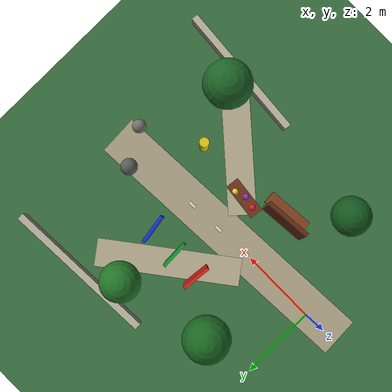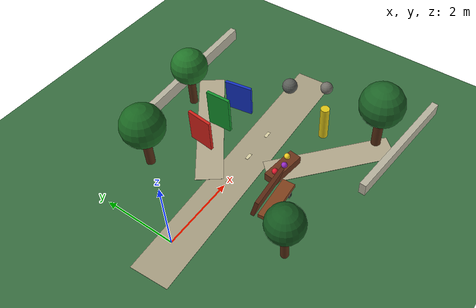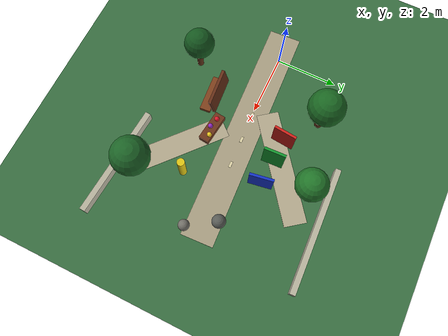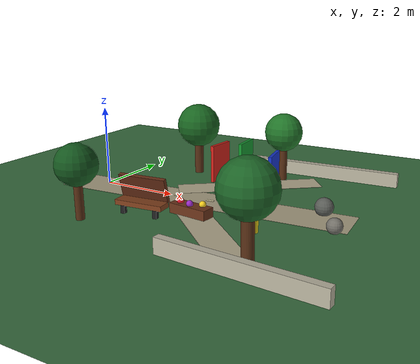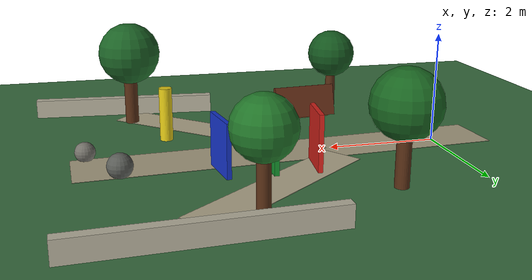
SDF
<?xml version="1.0"?>
<sdf version="1.6">
  <world name="mari_park_test">
    <gravity>0 0 -9.80665</gravity>

    <spherical_coordinates>
      <!-- Keep GPS local ENU behavior aligned with the other Mari Gazebo worlds. -->
      <heading_deg>180</heading_deg>
    </spherical_coordinates>

    <physics name="default_physics" default="true" type="ode">
      <max_step_size>0.001</max_step_size>
      <real_time_factor>1.0</real_time_factor>
      <real_time_update_rate>1000</real_time_update_rate>
    </physics>

    <scene>
      <ambient>0.60 0.60 0.56 1</ambient>
      <background>0.68 0.80 1.00 1</background>
      <shadows>true</shadows>
    </scene>

    <light name="sun" type="directional">
      <cast_shadows>true</cast_shadows>
      <pose>0 0 10 0 0 0</pose>
      <diffuse>0.95 0.91 0.82 1</diffuse>
      <specular>0.20 0.20 0.18 1</specular>
      <attenuation>
        <range>1000</range>
        <constant>0.9</constant>
        <linear>0.01</linear>
        <quadratic>0.001</quadratic>
      </attenuation>
      <direction>-0.35 0.28 -0.89</direction>
    </light>

    <model name="park_ground">
      <static>true</static>
      <link name="link">
        <collision name="ground_collision">
          <geometry>
            <plane>
              <normal>0 0 1</normal>
              <size>18 14</size>
            </plane>
          </geometry>
        </collision>
        <visual name="grass_visual">
          <geometry>
            <plane>
              <normal>0 0 1</normal>
              <size>18 14</size>
            </plane>
          </geometry>
          <material>
            <ambient>0.22 0.43 0.25 1</ambient>
            <diffuse>0.22 0.43 0.25 1</diffuse>
          </material>
        </visual>
      </link>
    </model>

    <model name="walking_paths">
      <static>true</static>
      <link name="link">
        <visual name="main_path">
          <pose>2.8 0 0.004 0 0 0.05</pose>
          <geometry>
            <box>
              <size>7.6 1.05 0.008</size>
            </box>
          </geometry>
          <material>
            <ambient>0.66 0.62 0.51 1</ambient>
            <diffuse>0.66 0.62 0.51 1</diffuse>
          </material>
        </visual>
        <visual name="left_branch_path">
          <pose>3.4 1.55 0.005 0 0 0.65</pose>
          <geometry>
            <box>
              <size>3.7 0.72 0.010</size>
            </box>
          </geometry>
          <material>
            <ambient>0.70 0.66 0.55 1</ambient>
            <diffuse>0.70 0.66 0.55 1</diffuse>
          </material>
        </visual>
        <visual name="right_branch_path">
          <pose>4.2 -1.75 0.005 0 0 -0.72</pose>
          <geometry>
            <box>
              <size>3.4 0.72 0.010</size>
            </box>
          </geometry>
          <material>
            <ambient>0.70 0.66 0.55 1</ambient>
            <diffuse>0.70 0.66 0.55 1</diffuse>
          </material>
        </visual>
        <visual name="path_center_marker">
          <pose>2.2 0.0 0.011 0 0 0.05</pose>
          <geometry>
            <box>
              <size>0.20 0.08 0.012</size>
            </box>
          </geometry>
          <material>
            <ambient>0.86 0.82 0.65 1</ambient>
            <diffuse>0.86 0.82 0.65 1</diffuse>
          </material>
        </visual>
        <visual name="path_center_marker_2">
          <pose>3.1 0.05 0.011 0 0 0.05</pose>
          <geometry>
            <box>
              <size>0.20 0.08 0.012</size>
            </box>
          </geometry>
          <material>
            <ambient>0.86 0.82 0.65 1</ambient>
            <diffuse>0.86 0.82 0.65 1</diffuse>
          </material>
        </visual>
        <visual name="path_center_marker_3">
          <pose>4.0 0.09 0.011 0 0 0.05</pose>
          <geometry>
            <box>
              <size>0.20 0.08 0.012</size>
            </box>
          </geometry>
          <material>
            <ambient>0.86 0.82 0.65 1</ambient>
            <diffuse>0.86 0.82 0.65 1</diffuse>
          </material>
        </visual>
      </link>
    </model>

    <model name="front_park_landmarks">
      <static>true</static>
      <link name="link">
        <collision name="red_sign_collision">
          <pose>2.7 1.25 0.65 0 0 -0.10</pose>
          <geometry>
            <box>
              <size>0.08 0.72 0.95</size>
            </box>
          </geometry>
        </collision>
        <visual name="red_sign_visual">
          <pose>2.7 1.25 0.65 0 0 -0.10</pose>
          <geometry>
            <box>
              <size>0.08 0.72 0.95</size>
            </box>
          </geometry>
          <material>
            <ambient>0.82 0.13 0.10 1</ambient>
            <diffuse>0.82 0.13 0.10 1</diffuse>
          </material>
        </visual>
        <collision name="green_sign_collision">
          <pose>3.45 1.23 0.72 0 0 0.04</pose>
          <geometry>
            <box>
              <size>0.08 0.68 1.10</size>
            </box>
          </geometry>
        </collision>
        <visual name="green_sign_visual">
          <pose>3.45 1.23 0.72 0 0 0.04</pose>
          <geometry>
            <box>
              <size>0.08 0.68 1.10</size>
            </box>
          </geometry>
          <material>
            <ambient>0.08 0.58 0.18 1</ambient>
            <diffuse>0.08 0.58 0.18 1</diffuse>
          </material>
        </visual>
        <collision name="blue_sign_collision">
          <pose>4.25 1.18 0.62 0 0 0.16</pose>
          <geometry>
            <box>
              <size>0.08 0.75 0.90</size>
            </box>
          </geometry>
        </collision>
        <visual name="blue_sign_visual">
          <pose>4.25 1.18 0.62 0 0 0.16</pose>
          <geometry>
            <box>
              <size>0.08 0.75 0.90</size>
            </box>
          </geometry>
          <material>
            <ambient>0.08 0.20 0.78 1</ambient>
            <diffuse>0.08 0.20 0.78 1</diffuse>
          </material>
        </visual>
        <collision name="yellow_post_collision">
          <pose>4.85 -1.15 0.50 0 0 0</pose>
          <geometry>
            <cylinder>
              <radius>0.12</radius>
              <length>1.00</length>
            </cylinder>
          </geometry>
        </collision>
        <visual name="yellow_post_visual">
          <pose>4.85 -1.15 0.50 0 0 0</pose>
          <geometry>
            <cylinder>
              <radius>0.12</radius>
              <length>1.00</length>
            </cylinder>
          </geometry>
          <material>
            <ambient>0.88 0.78 0.08 1</ambient>
            <diffuse>0.88 0.78 0.08 1</diffuse>
          </material>
        </visual>
      </link>
    </model>

    <model name="left_bench">
      <static>true</static>
      <pose>2.2 -1.45 0 0 0 0.08</pose>
      <link name="link">
        <collision name="seat_collision">
          <pose>0 0 0.26 0 0 0</pose>
          <geometry>
            <box>
              <size>1.20 0.34 0.12</size>
            </box>
          </geometry>
        </collision>
        <visual name="seat_visual">
          <pose>0 0 0.26 0 0 0</pose>
          <geometry>
            <box>
              <size>1.20 0.34 0.12</size>
            </box>
          </geometry>
          <material>
            <ambient>0.50 0.25 0.11 1</ambient>
            <diffuse>0.50 0.25 0.11 1</diffuse>
          </material>
        </visual>
        <collision name="back_collision">
          <pose>-0.06 0.22 0.55 0.25 0 0</pose>
          <geometry>
            <box>
              <size>1.20 0.10 0.60</size>
            </box>
          </geometry>
        </collision>
        <visual name="back_visual">
          <pose>-0.06 0.22 0.55 0.25 0 0</pose>
          <geometry>
            <box>
              <size>1.20 0.10 0.60</size>
            </box>
          </geometry>
          <material>
            <ambient>0.38 0.17 0.08 1</ambient>
            <diffuse>0.38 0.17 0.08 1</diffuse>
          </material>
        </visual>
        <collision name="left_leg_collision">
          <pose>-0.42 -0.10 0.12 0 0 0</pose>
          <geometry>
            <box>
              <size>0.10 0.10 0.24</size>
            </box>
          </geometry>
        </collision>
        <visual name="left_leg_visual">
          <pose>-0.42 -0.10 0.12 0 0 0</pose>
          <geometry>
            <box>
              <size>0.10 0.10 0.24</size>
            </box>
          </geometry>
          <material>
            <ambient>0.12 0.12 0.12 1</ambient>
            <diffuse>0.12 0.12 0.12 1</diffuse>
          </material>
        </visual>
        <collision name="right_leg_collision">
          <pose>0.42 -0.10 0.12 0 0 0</pose>
          <geometry>
            <box>
              <size>0.10 0.10 0.24</size>
            </box>
          </geometry>
        </collision>
        <visual name="right_leg_visual">
          <pose>0.42 -0.10 0.12 0 0 0</pose>
          <geometry>
            <box>
              <size>0.10 0.10 0.24</size>
            </box>
          </geometry>
          <material>
            <ambient>0.12 0.12 0.12 1</ambient>
            <diffuse>0.12 0.12 0.12 1</diffuse>
          </material>
        </visual>
      </link>
    </model>

    <model name="tree_cluster_left">
      <static>true</static>
      <link name="link">
        <collision name="trunk_1_collision">
          <pose>1.55 2.05 0.55 0 0 0</pose>
          <geometry>
            <cylinder>
              <radius>0.12</radius>
              <length>1.10</length>
            </cylinder>
          </geometry>
        </collision>
        <visual name="trunk_1_visual">
          <pose>1.55 2.05 0.55 0 0 0</pose>
          <geometry>
            <cylinder>
              <radius>0.12</radius>
              <length>1.10</length>
            </cylinder>
          </geometry>
          <material>
            <ambient>0.34 0.18 0.08 1</ambient>
            <diffuse>0.34 0.18 0.08 1</diffuse>
          </material>
        </visual>
        <visual name="canopy_1_visual">
          <pose>1.55 2.05 1.35 0 0 0</pose>
          <geometry>
            <sphere>
              <radius>0.58</radius>
            </sphere>
          </geometry>
          <material>
            <ambient>0.10 0.40 0.13 1</ambient>
            <diffuse>0.10 0.40 0.13 1</diffuse>
          </material>
        </visual>
        <collision name="trunk_2_collision">
          <pose>3.9 2.55 0.52 0 0 0</pose>
          <geometry>
            <cylinder>
              <radius>0.11</radius>
              <length>1.04</length>
            </cylinder>
          </geometry>
        </collision>
        <visual name="trunk_2_visual">
          <pose>3.9 2.55 0.52 0 0 0</pose>
          <geometry>
            <cylinder>
              <radius>0.11</radius>
              <length>1.04</length>
            </cylinder>
          </geometry>
          <material>
            <ambient>0.34 0.18 0.08 1</ambient>
            <diffuse>0.34 0.18 0.08 1</diffuse>
          </material>
        </visual>
        <visual name="canopy_2_visual">
          <pose>3.9 2.55 1.30 0 0 0</pose>
          <geometry>
            <sphere>
              <radius>0.50</radius>
            </sphere>
          </geometry>
          <material>
            <ambient>0.13 0.46 0.16 1</ambient>
            <diffuse>0.13 0.46 0.16 1</diffuse>
          </material>
        </visual>
      </link>
    </model>

    <model name="tree_cluster_right">
      <static>true</static>
      <link name="link">
        <collision name="trunk_3_collision">
          <pose>1.2 -2.35 0.50 0 0 0</pose>
          <geometry>
            <cylinder>
              <radius>0.10</radius>
              <length>1.00</length>
            </cylinder>
          </geometry>
        </collision>
        <visual name="trunk_3_visual">
          <pose>1.2 -2.35 0.50 0 0 0</pose>
          <geometry>
            <cylinder>
              <radius>0.10</radius>
              <length>1.00</length>
            </cylinder>
          </geometry>
          <material>
            <ambient>0.34 0.18 0.08 1</ambient>
            <diffuse>0.34 0.18 0.08 1</diffuse>
          </material>
        </visual>
        <visual name="canopy_3_visual">
          <pose>1.2 -2.35 1.25 0 0 0</pose>
          <geometry>
            <sphere>
              <radius>0.48</radius>
            </sphere>
          </geometry>
          <material>
            <ambient>0.08 0.34 0.12 1</ambient>
            <diffuse>0.08 0.34 0.12 1</diffuse>
          </material>
        </visual>
        <collision name="trunk_4_collision">
          <pose>5.4 -2.45 0.58 0 0 0</pose>
          <geometry>
            <cylinder>
              <radius>0.13</radius>
              <length>1.16</length>
            </cylinder>
          </geometry>
        </collision>
        <visual name="trunk_4_visual">
          <pose>5.4 -2.45 0.58 0 0 0</pose>
          <geometry>
            <cylinder>
              <radius>0.13</radius>
              <length>1.16</length>
            </cylinder>
          </geometry>
          <material>
            <ambient>0.34 0.18 0.08 1</ambient>
            <diffuse>0.34 0.18 0.08 1</diffuse>
          </material>
        </visual>
        <visual name="canopy_4_visual">
          <pose>5.4 -2.45 1.42 0 0 0</pose>
          <geometry>
            <sphere>
              <radius>0.60</radius>
            </sphere>
          </geometry>
          <material>
            <ambient>0.11 0.39 0.15 1</ambient>
            <diffuse>0.11 0.39 0.15 1</diffuse>
          </material>
        </visual>
      </link>
    </model>

    <model name="flower_beds_and_rocks">
      <static>true</static>
      <link name="link">
        <collision name="left_bed_collision">
          <pose>3.2 -0.95 0.12 0 0 -0.12</pose>
          <geometry>
            <box>
              <size>1.00 0.34 0.24</size>
            </box>
          </geometry>
        </collision>
        <visual name="left_bed_visual">
          <pose>3.2 -0.95 0.12 0 0 -0.12</pose>
          <geometry>
            <box>
              <size>1.00 0.34 0.24</size>
            </box>
          </geometry>
          <material>
            <ambient>0.42 0.20 0.10 1</ambient>
            <diffuse>0.42 0.20 0.10 1</diffuse>
          </material>
        </visual>
        <visual name="flower_red_1">
          <pose>2.90 -0.92 0.28 0 0 0</pose>
          <geometry>
            <sphere>
              <radius>0.08</radius>
            </sphere>
          </geometry>
          <material>
            <ambient>0.90 0.10 0.18 1</ambient>
            <diffuse>0.90 0.10 0.18 1</diffuse>
          </material>
        </visual>
        <visual name="flower_purple_1">
          <pose>3.20 -1.00 0.28 0 0 0</pose>
          <geometry>
            <sphere>
              <radius>0.08</radius>
            </sphere>
          </geometry>
          <material>
            <ambient>0.60 0.16 0.78 1</ambient>
            <diffuse>0.60 0.16 0.78 1</diffuse>
          </material>
        </visual>
        <visual name="flower_yellow_1">
          <pose>3.48 -0.90 0.28 0 0 0</pose>
          <geometry>
            <sphere>
              <radius>0.08</radius>
            </sphere>
          </geometry>
          <material>
            <ambient>0.96 0.80 0.12 1</ambient>
            <diffuse>0.96 0.80 0.12 1</diffuse>
          </material>
        </visual>
        <collision name="rock_1_collision">
          <pose>5.8 0.55 0.17 0 0 0</pose>
          <geometry>
            <sphere>
              <radius>0.22</radius>
            </sphere>
          </geometry>
        </collision>
        <visual name="rock_1_visual">
          <pose>5.8 0.55 0.17 0 0 0</pose>
          <geometry>
            <sphere>
              <radius>0.22</radius>
            </sphere>
          </geometry>
          <material>
            <ambient>0.35 0.36 0.34 1</ambient>
            <diffuse>0.35 0.36 0.34 1</diffuse>
          </material>
        </visual>
        <collision name="rock_2_collision">
          <pose>6.35 -0.35 0.14 0 0 0</pose>
          <geometry>
            <sphere>
              <radius>0.18</radius>
            </sphere>
          </geometry>
        </collision>
        <visual name="rock_2_visual">
          <pose>6.35 -0.35 0.14 0 0 0</pose>
          <geometry>
            <sphere>
              <radius>0.18</radius>
            </sphere>
          </geometry>
          <material>
            <ambient>0.45 0.44 0.41 1</ambient>
            <diffuse>0.45 0.44 0.41 1</diffuse>
          </material>
        </visual>
      </link>
    </model>

    <model name="park_boundary_cues">
      <static>true</static>
      <link name="link">
        <visual name="left_low_wall">
          <pose>4.8 3.25 0.18 0 0 0.04</pose>
          <geometry>
            <box>
              <size>4.0 0.18 0.36</size>
            </box>
          </geometry>
          <material>
            <ambient>0.72 0.70 0.62 1</ambient>
            <diffuse>0.72 0.70 0.62 1</diffuse>
          </material>
        </visual>
        <collision name="left_low_wall_collision">
          <pose>4.8 3.25 0.18 0 0 0.04</pose>
          <geometry>
            <box>
              <size>4.0 0.18 0.36</size>
            </box>
          </geometry>
        </collision>
        <visual name="right_low_wall">
          <pose>5.5 -3.10 0.18 0 0 -0.08</pose>
          <geometry>
            <box>
              <size>3.6 0.18 0.36</size>
            </box>
          </geometry>
          <material>
            <ambient>0.72 0.70 0.62 1</ambient>
            <diffuse>0.72 0.70 0.62 1</diffuse>
          </material>
        </visual>
        <collision name="right_low_wall_collision">
          <pose>5.5 -3.10 0.18 0 0 -0.08</pose>
          <geometry>
            <box>
              <size>3.6 0.18 0.36</size>
            </box>
          </geometry>
        </collision>
      </link>
    </model>
  </world>
</sdf>
